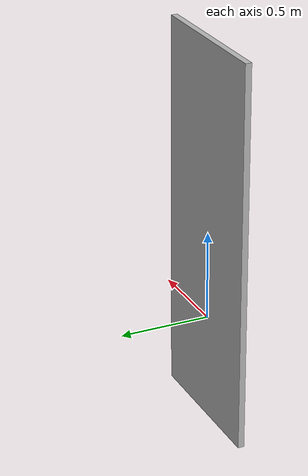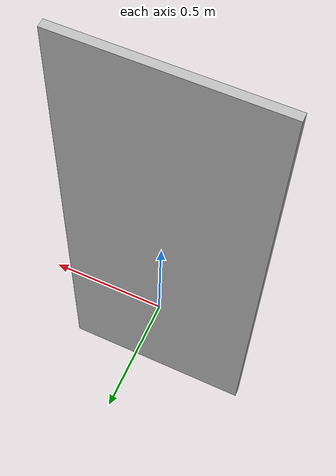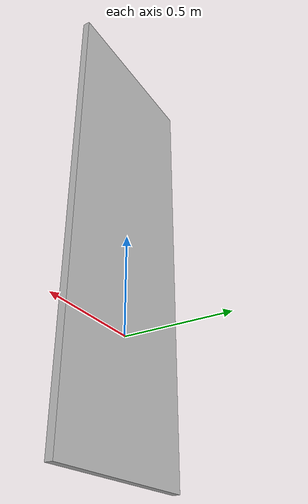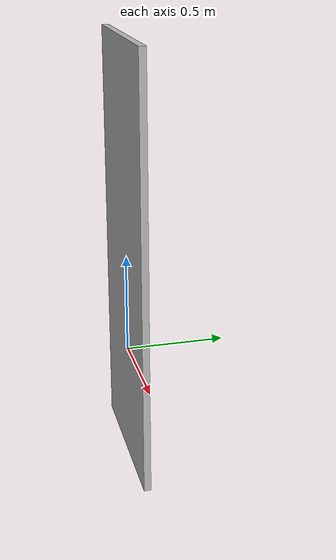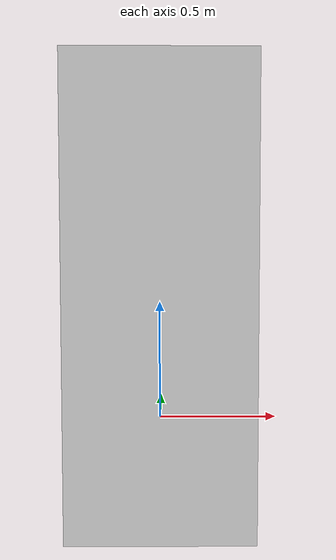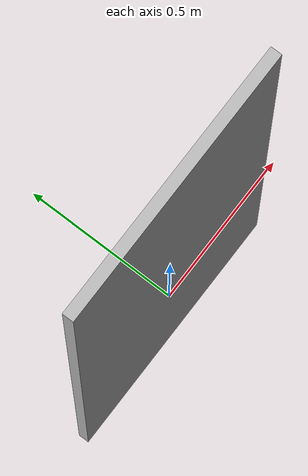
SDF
<?xml version='1.0'?>
<sdf version="1.4">
<model name="PortaExternaEsquerda">
  <pose>0 0 0.5 0 0 0</pose>
  <static>true</static>
    <link name="link">
      <collision name="collision">
        <geometry>
          <box>
            <size>2.15 3.5 0.85</size>
          </box>
        </geometry>
      </collision>
      <visual name="visual">
        <geometry>
          <box>
            <size>0.85 0.035 2.15</size>
          </box>
        </geometry>
	<material>
          <script>
            <uri>model://PortaExternaEsquerda/materials/scripts</uri>
            <uri>model://PortaExternaEsquerda/materials/textures</uri>
            <name>TexturaPortaExternaEsquerda/Image</name>
          </script>
        </material>
      </visual>
    </link>
  </model>
</sdf>
